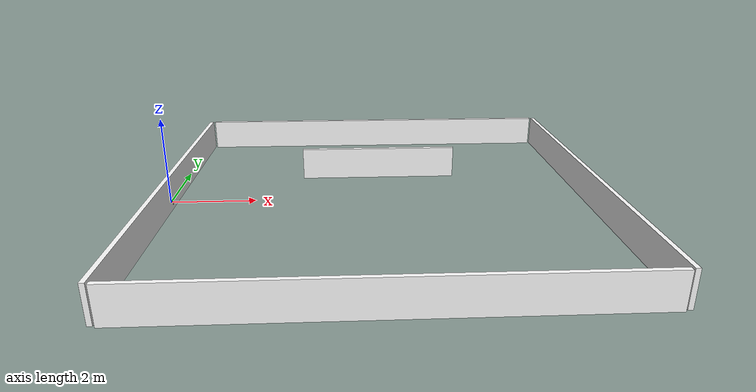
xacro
<?xml version="1.0"?>
<robot name="world" xmlns:xacro="http://ros.org/wiki/xacro">

	<material name="white">
		<color rgba = "1 1 1 1"/>
	</material>

	<xacro:macro name="no_inertia">
		<inertial>
			<origin xyz="0 0 0" rpy="0 0 0"/>
			<mass value="1"/>
			<inertia ixx="1e-6" ixy="1e-6" ixz="1e-6" iyy="1e-6" iyz="1e-6" izz="1e-6"/>
		</inertial>
	</xacro:macro>

	<xacro:macro name="wall" params="iwall x y">
		<link name="wall_${iwall}">
			<visual>
				<geometry>
					<box size="${x} ${y} 0.8"/>
				</geometry>
				<material name="white"/>
			</visual>
			<collision>
				<geometry>
					<box size="${x} ${y} 0.8"/>
				</geometry>
			</collision>
			<xacro:no_inertia/>
		</link>
	</xacro:macro>

	<xacro:wall iwall="1" x="0.1" y="10"/>
	<xacro:wall iwall="2" x="9.8" y="0.1"/>
	<xacro:wall iwall="5" x="9.8" y="0.1"/>
	<xacro:wall iwall="6" x="0.1" y="10"/>
	<xacro:wall iwall="7" x="4.0" y="0.1"/>

	<xacro:macro name="joint_walls" params="iparent ichild x y">
		<joint name="wall_${iparent}_to_${ichild}" type="fixed">
			<parent link="wall_${iparent}"/>
			<child link="wall_${ichild}"/>
			<origin xyz="${x} ${y} 0"/>
		</joint>
	</xacro:macro>

	<xacro:joint_walls iparent="1" ichild="2" x="5" y="5"/>
	<xacro:joint_walls iparent="1" ichild="5" x="5" y="-5"/>
	<xacro:joint_walls iparent="1" ichild="6" x="10" y="0"/>
	<xacro:joint_walls iparent="1" ichild="7" x="5" y="2"/>

	<!-- Base link -->
	<link name="base_wall">
		<visual>
			<geometry>
				<box size="0.1 0.1 0.1"/>
			</geometry>
		</visual>
		<collision>
			<geometry>
				<box size="0 0 0"/>
			</geometry>
		</collision>
		<xacro:no_inertia/>
	</link>

	<joint name="base_to_wall_1" type="fixed">
		<parent link="base_wall"/>
		<child link="wall_1"/>
		<origin xyz="0 0 0.25"/>
	</joint>
</robot>
